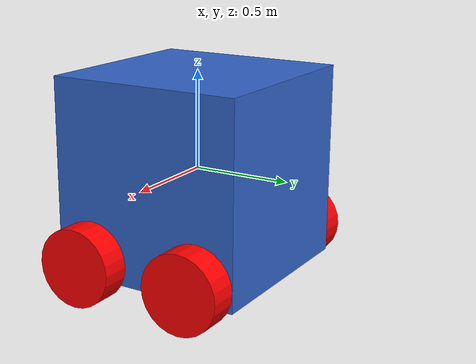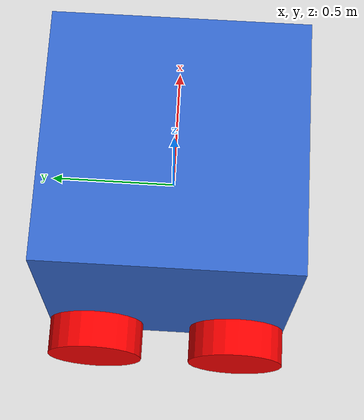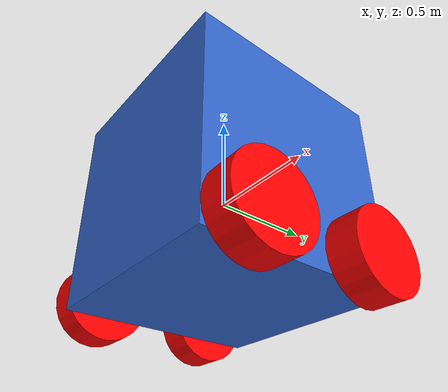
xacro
<?xml version="1.0"?>
<robot name="simple_block">

    <joint name="wheel1_to_base" type="continuous">
        <parent link="base_link"/>
        <child link="wheel1"/>
        <axis xyz="0 0 1"/>
        <origin xyz="-0.575 0.3 -0.4" rpy="1.5708 0 1.5708"/>
    </joint>

    <joint name="wheel2_to_base" type="continuous">
        <parent link="base_link"/>
        <child link="wheel2"/>
        <axis xyz="0 0 1"/>
        <origin xyz="0.575 0.3 -0.4" rpy="1.5708 0 1.5708"/>
    </joint>

    <joint name="wheel3_to_base" type="continuous">
        <parent link="base_link"/>
        <child link="wheel3"/>
        <axis xyz="0 0 1"/>
        <origin xyz="-0.575 -0.3 -0.4" rpy="1.5708 0 1.5708"/>
    </joint>

    <joint name="wheel4_to_base" type="continuous">
        <parent link="base_link"/>
        <child link="wheel4"/>
        <axis xyz="0 0 1"/>
        <origin xyz="0.575 -0.3 -0.4" rpy="1.5708 0 1.5708"/>
    </joint>

    <link name="base_link">
        <visual>
            <geometry>
                <box size="1.0 1.0 1.0"/>
            </geometry>
            <material name="blue">
                <color rgba="0.2 0.4 0.8 1.0"/>
            </material>
            <origin xyz="0 0 0" rpy="0 0 0"/>
        </visual>
        <collision>
            <geometry>
                <box size="1.0 1.0 1.0"/>
            </geometry>
            <origin xyz="0 0 0" rpy="0 0 0"/>
        </collision>
        <inertial>
            <mass value="3.5"/>
            <inertia ixx="0.583" ixy="0.0" ixz="0.0" iyy="0.583" iyz="0.0" izz="0.583"/>
        </inertial>
    </link>

    <link name="wheel1">
        <visual>
            <geometry>
                <cylinder radius="0.2" length="0.15"/>
            </geometry>
            <material name="red">
                <color rgba="1.0 0.0 0.0 1.0"/>
            </material>
            <origin xyz="0 0 0" rpy="0 0 0"/>
        </visual>
        <collision>
            <geometry>
                <cylinder radius="0.2" length="0.15"/>
            </geometry>
            <origin xyz="0 0 0" rpy="0 0 0"/>
        </collision>
        <inertial>
            <mass value="0.8"/>
            <inertia ixx="0.0095" ixy="0.0" ixz="0.0" iyy="0.0095" iyz="0.0" izz="0.016"/>
        </inertial>
    </link>
    <link name="wheel2">
        <visual>
            <geometry>
                <cylinder radius="0.2" length="0.15"/>
            </geometry>
            <material name="red">
                <color rgba="1.0 0.0 0.0 1.0"/>
            </material>
            <origin xyz="0 0 0" rpy="0 0 0"/>
        </visual>
        <collision>
            <geometry>
                <cylinder radius="0.2" length="0.15"/>
            </geometry>
            <origin xyz="0 0 0" rpy="0 0 0"/>
        </collision>
        <inertial>
            <mass value="0.8"/>
            <inertia ixx="0.0095" ixy="0.0" ixz="0.0" iyy="0.0095" iyz="0.0" izz="0.016"/>
        </inertial>
    </link>
    <link name="wheel3">
        <visual>
            <geometry>
                <cylinder radius="0.2" length="0.15"/>
            </geometry>
            <material name="red">
                <color rgba="1.0 0.0 0.0 1.0"/>
            </material>
            <origin xyz="0 0 0" rpy="0 0 0"/>
        </visual>
        <collision>
            <geometry>
                <cylinder radius="0.2" length="0.15"/>
            </geometry>
            <origin xyz="0 0 0" rpy="0 0 0"/>
        </collision>
        <inertial>
            <mass value="0.8"/>
            <inertia ixx="0.0095" ixy="0.0" ixz="0.0" iyy="0.0095" iyz="0.0" izz="0.016"/>
        </inertial>
    </link>
    <link name="wheel4">
        <visual>
            <geometry>
                <cylinder radius="0.2" length="0.15"/>
            </geometry>
            <material name="red">
                <color rgba="1.0 0.0 0.0 1.0"/>
            </material>
            <origin xyz="0 0 0" rpy="0 0 0"/>
        </visual>
        <collision>
            <geometry>
                <cylinder radius="0.2" length="0.15"/>
            </geometry>
            <origin xyz="0 0 0" rpy="0 0 0"/>
        </collision>
        <inertial>
            <mass value="0.8"/>
            <inertia ixx="0.0095" ixy="0.0" ixz="0.0" iyy="0.0095" iyz="0.0" izz="0.016"/>
        </inertial>
    </link>

    <ros2_control name="first_urdf_control" type="system">
        <hardware>
            <plugin>gazebo_ros2_control/GazeboSystem</plugin>
        </hardware>
        <joint name="wheel1_to_base">
            <command_interface name="velocity">
                <param name="min">-10</param>
                <param name="max">10</param>
            </command_interface>
            <state_interface name="velocity"/>
            <state_interface name="position"/>
        </joint>
        <joint name="wheel2_to_base">
            <command_interface name="velocity">
                <param name="min">-10</param>
                <param name="max">10</param>
            </command_interface>
            <state_interface name="velocity"/>
            <state_interface name="position"/>
        </joint>
        <joint name="wheel3_to_base">
            <command_interface name="velocity">
                <param name="min">-10</param>
                <param name="max">10</param>
            </command_interface>
            <state_interface name="velocity"/>
            <state_interface name="position"/>
        </joint>
        <joint name="wheel4_to_base">
            <command_interface name="velocity">
                <param name="min">-10</param>
                <param name="max">10</param>
            </command_interface>
            <state_interface name="velocity"/>
            <state_interface name="position"/>
        </joint>
    </ros2_control>

    <gazebo>
        <plugin name="gazebo_ros2_control" filename="libgazebo_ros2_control.so">
            <parameters>$(find first_urdf)/config/controller.yaml</parameters>
        </plugin>
    </gazebo>

    <gazebo reference="wheel1">
        <mu1>0.8</mu1>
        <mu2>0.5</mu2>
    </gazebo>

    <gazebo reference="wheel4">
        <mu1>0.8</mu1>
        <mu2>0.5</mu2>
    </gazebo>

   <gazebo reference="wheel3">
        <mu1>0.8</mu1>
        <mu2>0.5</mu2>
    </gazebo>

    <gazebo reference="wheel2">
        <mu1>0.8</mu1>
        <mu2>0.5</mu2>
    </gazebo>

    <gazebo reference="base_link">
        <material>Gazebo/Blue</material>
    </gazebo>

    <gazebo reference="wheel1">
        <material>Gazebo/Red</material>
    </gazebo>

    <gazebo reference="wheel2">
        <material>Gazebo/Red</material>
    </gazebo>

    <gazebo reference="wheel3">
        <material>Gazebo/Red</material>
    </gazebo>

    <gazebo reference="wheel4">
        <material>Gazebo/Red</material>
    </gazebo>

</robot>
